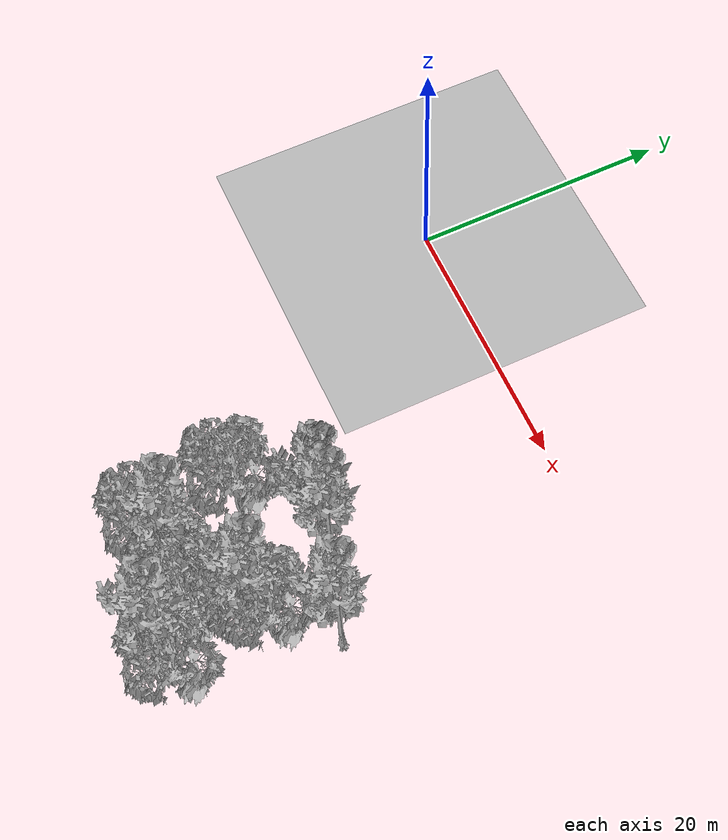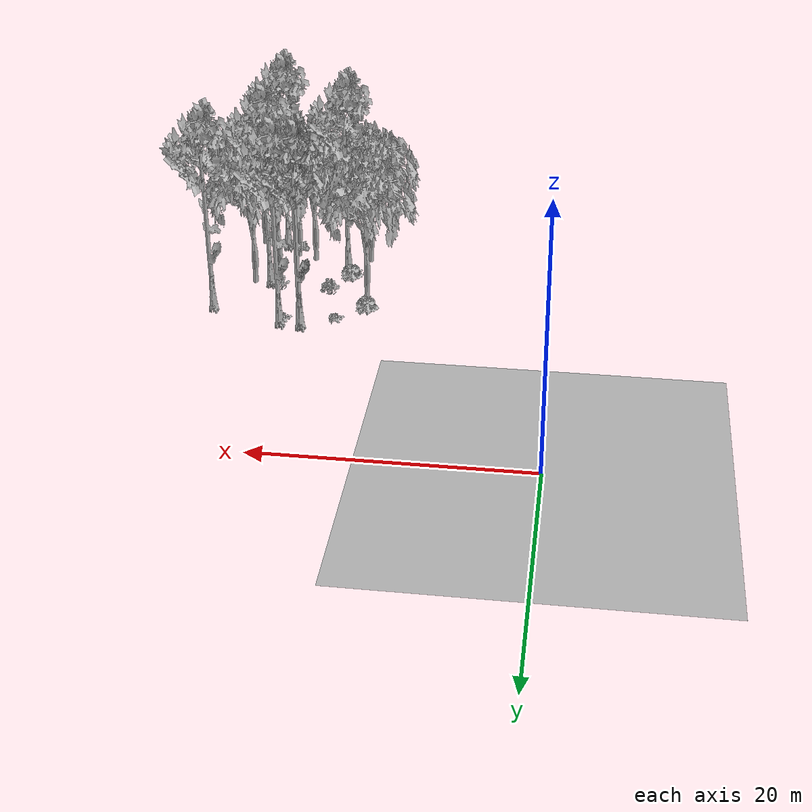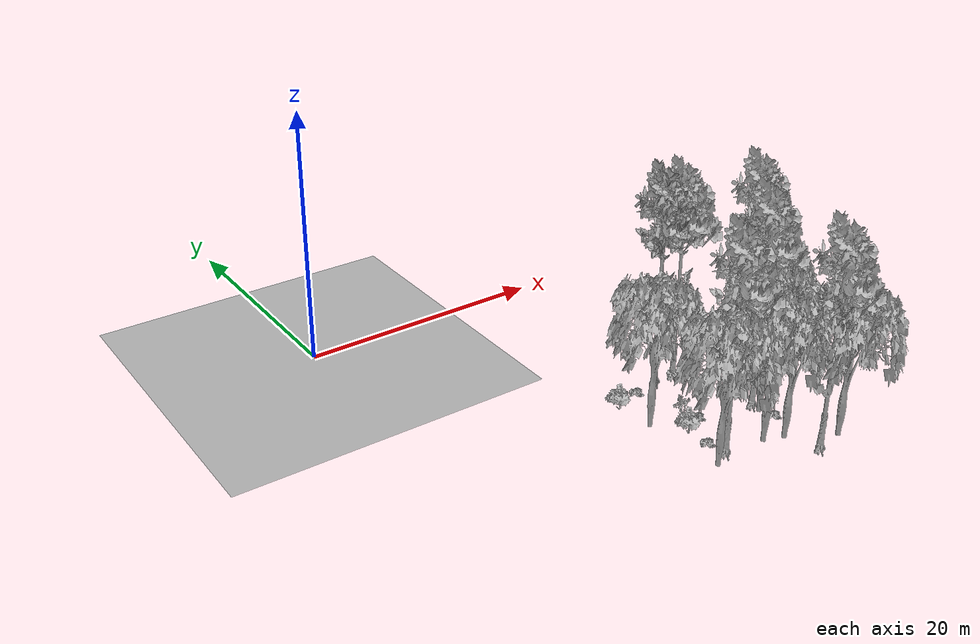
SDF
<sdf version="1.7">
 <world name="default">
  <model name="ground_plane">
   <static>1</static>
   <link name="link">
    <collision name="collision">
     <pose>-50 0 0 0 -0 0</pose>
     <geometry><plane><normal>0 0 1</normal><size>80 80</size></plane></geometry>
     <surface><contact><ode><min_depth>0.01</min_depth><max_vel>0</max_vel></ode></contact></surface>
    </collision>
    <visual name="grass">
     <cast_shadows>0</cast_shadows>
     <geometry>
      <mesh>
       <scale>0.46714285714285714 0.46714285714285714 0.1</scale>
       <uri>file://grass_plane/meshes/grass_plane.dae</uri>
      </mesh>
     </geometry>
    </visual>
   </link>
  </model>
  <model name="Tree 31">
   <static>1</static>
   <pose>27.04506858519764 -19.265056509333178 0 1.57079 -0 0</pose>
   <link name="link">
    <collision name="collision">
     <geometry><mesh><scale>3.5 5 3.5</scale><uri>model://tree_9/meshes/tree_9.obj</uri></mesh></geometry>
    </collision>
    <visual name="visual">
     <geometry><mesh><scale>3.5 5 3.5</scale><uri>model://tree_9/meshes/tree_9.obj</uri></mesh></geometry>
    </visual>
   </link>
  </model>
  <model name="Tree 59">
   <static>1</static>
   <pose>21.341915763431714 -17.429895293934994 0 1.57079 -0 0</pose>
   <link name="link">
    <collision name="collision">
     <geometry><mesh><scale>3.5 5 3.5</scale><uri>model://tree_9/meshes/tree_9.obj</uri></mesh></geometry>
    </collision>
    <visual name="visual">
     <geometry><mesh><scale>3.5 5 3.5</scale><uri>model://tree_9/meshes/tree_9.obj</uri></mesh></geometry>
    </visual>
   </link>
  </model>
  <model name="Tree 87">
   <static>1</static>
   <pose>21.836675745959397 -28.16158853375982 0 1.57079 -0 0</pose>
   <link name="link">
    <collision name="collision">
     <geometry><mesh><scale>3.5 5 3.5</scale><uri>model://tree_2/meshes/tree_2.obj</uri></mesh></geometry>
    </collision>
    <visual name="visual">
     <geometry><mesh><scale>3.5 5 3.5</scale><uri>model://tree_2/meshes/tree_2.obj</uri></mesh></geometry>
    </visual>
   </link>
  </model>
  <model name="Tree 142">
   <static>1</static>
   <pose>23.408536917499212 -23.666143860471507 0 1.57079 -0 0</pose>
   <link name="link">
    <collision name="collision">
     <geometry><mesh><scale>3.5 5 3.5</scale><uri>model://tree_9/meshes/tree_9.obj</uri></mesh></geometry>
    </collision>
    <visual name="visual">
     <geometry><mesh><scale>3.5 5 3.5</scale><uri>model://tree_9/meshes/tree_9.obj</uri></mesh></geometry>
    </visual>
   </link>
  </model>
  <model name="Tree 174">
   <static>1</static>
   <pose>23.314443339775245 -30.19840632438628 0 1.57079 -0 0</pose>
   <link name="link">
    <collision name="collision">
     <geometry><mesh><scale>3.5 5 3.5</scale><uri>model://tree_9/meshes/tree_9.obj</uri></mesh></geometry>
    </collision>
    <visual name="visual">
     <geometry><mesh><scale>3.5 5 3.5</scale><uri>model://tree_9/meshes/tree_9.obj</uri></mesh></geometry>
    </visual>
   </link>
  </model>
  <model name="Tree 175">
   <static>1</static>
   <pose>24.444471712358926 -23.261723861976435 0 1.57079 -0 0</pose>
   <link name="link">
    <collision name="collision">
     <geometry><mesh><scale>3.5 5 3.5</scale><uri>model://tree_2/meshes/tree_2.obj</uri></mesh></geometry>
    </collision>
    <visual name="visual">
     <geometry><mesh><scale>3.5 5 3.5</scale><uri>model://tree_2/meshes/tree_2.obj</uri></mesh></geometry>
    </visual>
   </link>
  </model>
  <model name="Tree 229">
   <static>1</static>
   <pose>25.18993648033144 -30.060204590851445 0 1.57079 -0 0</pose>
   <link name="link">
    <collision name="collision">
     <geometry><mesh><scale>3.5 5 3.5</scale><uri>model://tree_2/meshes/tree_2.obj</uri></mesh></geometry>
    </collision>
    <visual name="visual">
     <geometry><mesh><scale>3.5 5 3.5</scale><uri>model://tree_2/meshes/tree_2.obj</uri></mesh></geometry>
    </visual>
   </link>
  </model>
  <model name="Tree 324">
   <static>1</static>
   <pose>19.651913249117527 -17.256295517649693 0 1.57079 -0 0</pose>
   <link name="link">
    <collision name="collision">
     <geometry><mesh><scale>3.5 5 3.5</scale><uri>model://tree_9/meshes/tree_9.obj</uri></mesh></geometry>
    </collision>
    <visual name="visual">
     <geometry><mesh><scale>3.5 5 3.5</scale><uri>model://tree_9/meshes/tree_9.obj</uri></mesh></geometry>
    </visual>
   </link>
  </model>
  <model name="Tree 347">
   <static>1</static>
   <pose>15.72153486503138 -27.919104585124366 0 1.57079 -0 0</pose>
   <link name="link">
    <collision name="collision">
     <geometry><mesh><scale>3.5 5 3.5</scale><uri>model://tree_2/meshes/tree_2.obj</uri></mesh></geometry>
    </collision>
    <visual name="visual">
     <geometry><mesh><scale>3.5 5 3.5</scale><uri>model://tree_2/meshes/tree_2.obj</uri></mesh></geometry>
    </visual>
   </link>
  </model>
  <model name="Tree 348">
   <static>1</static>
   <pose>15.077811308792299 -21.818548373220004 0 1.57079 -0 0</pose>
   <link name="link">
    <collision name="collision">
     <geometry><mesh><scale>3.5 5 3.5</scale><uri>model://tree_2/meshes/tree_2.obj</uri></mesh></geometry>
    </collision>
    <visual name="visual">
     <geometry><mesh><scale>3.5 5 3.5</scale><uri>model://tree_2/meshes/tree_2.obj</uri></mesh></geometry>
    </visual>
   </link>
  </model>
  <model name="Tree 439">
   <static>1</static>
   <pose>22.803560132082858 -24.84670437900851 0 1.57079 -0 0</pose>
   <link name="link">
    <collision name="collision">
     <geometry><mesh><scale>3.5 5 3.5</scale><uri>model://tree_2/meshes/tree_2.obj</uri></mesh></geometry>
    </collision>
    <visual name="visual">
     <geometry><mesh><scale>3.5 5 3.5</scale><uri>model://tree_2/meshes/tree_2.obj</uri></mesh></geometry>
    </visual>
   </link>
  </model>
  <model name="Tree 440">
   <static>1</static>
   <pose>17.56092776240522 -26.874992370647995 0 1.57079 -0 0</pose>
   <link name="link">
    <collision name="collision">
     <geometry><mesh><scale>3.5 5 3.5</scale><uri>model://tree_9/meshes/tree_9.obj</uri></mesh></geometry>
    </collision>
    <visual name="visual">
     <geometry><mesh><scale>3.5 5 3.5</scale><uri>model://tree_9/meshes/tree_9.obj</uri></mesh></geometry>
    </visual>
   </link>
  </model>
  <model name="Tree 441">
   <static>1</static>
   <pose>19.698692074219387 -17.255089261533474 0 1.57079 -0 0</pose>
   <link name="link">
    <collision name="collision">
     <geometry><mesh><scale>3.5 5 3.5</scale><uri>model://tree_9/meshes/tree_9.obj</uri></mesh></geometry>
    </collision>
    <visual name="visual">
     <geometry><mesh><scale>3.5 5 3.5</scale><uri>model://tree_9/meshes/tree_9.obj</uri></mesh></geometry>
    </visual>
   </link>
  </model>
  <model name="Tree 495">
   <static>1</static>
   <pose>20.33149870368652 -27.622503040301236 0 1.57079 -0 0</pose>
   <link name="link">
    <collision name="collision">
     <geometry><mesh><scale>3.5 5 3.5</scale><uri>model://tree_2/meshes/tree_2.obj</uri></mesh></geometry>
    </collision>
    <visual name="visual">
     <geometry><mesh><scale>3.5 5 3.5</scale><uri>model://tree_2/meshes/tree_2.obj</uri></mesh></geometry>
    </visual>
   </link>
  </model>
  <model name="Bush 60">
   <static>1</static>
   <pose>22.25803159589026 -22.24194430354632 0 1.57079 -0 0</pose>
   <link name="link">
    <collision name="collision">
     <geometry><mesh><scale>2 2 2</scale><uri>model://bush_4/meshes/bush_4.obj</uri></mesh></geometry>
     <surface><contact><collide_without_contact>false</collide_without_contact></contact></surface>
    </collision>
    <visual name="visual">
     <geometry><mesh><scale>2 2 2</scale><uri>model://bush_4/meshes/bush_4.obj</uri></mesh></geometry>
    </visual>
   </link>
  </model>
  <model name="Bush 74">
   <static>1</static>
   <pose>16.735090615320253 -24.084290718607882 0 1.57079 -0 0</pose>
   <link name="link">
    <collision name="collision">
     <geometry><mesh><scale>2 2 2</scale><uri>model://bush_1/meshes/bush_1.obj</uri></mesh></geometry>
     <surface><contact><collide_without_contact>false</collide_without_contact></contact></surface>
    </collision>
    <visual name="visual">
     <geometry><mesh><scale>2 2 2</scale><uri>model://bush_1/meshes/bush_1.obj</uri></mesh></geometry>
    </visual>
   </link>
  </model>
  <model name="Bush 224">
   <static>1</static>
   <pose>16.87440756557404 -25.806295695334896 0 1.57079 -0 0</pose>
   <link name="link">
    <collision name="collision">
     <geometry><mesh><scale>2 2 2</scale><uri>model://bush_2/meshes/bush_2.obj</uri></mesh></geometry>
     <surface><contact><collide_without_contact>false</collide_without_contact></contact></surface>
    </collision>
    <visual name="visual">
     <geometry><mesh><scale>2 2 2</scale><uri>model://bush_2/meshes/bush_2.obj</uri></mesh></geometry>
    </visual>
   </link>
  </model>
  <model name="Bush 264">
   <static>1</static>
   <pose>14.691652220210642 -19.05031131544133 0 1.57079 -0 0</pose>
   <link name="link">
    <collision name="collision">
     <geometry><mesh><scale>2 2 2</scale><uri>model://bush_1/meshes/bush_1.obj</uri></mesh></geometry>
     <surface><contact><collide_without_contact>false</collide_without_contact></contact></surface>
    </collision>
    <visual name="visual">
     <geometry><mesh><scale>2 2 2</scale><uri>model://bush_1/meshes/bush_1.obj</uri></mesh></geometry>
    </visual>
   </link>
  </model>
  <model name="Bush 347">
   <static>1</static>
   <pose>18.5305606497758 -23.10445390964235 0 1.57079 -0 0</pose>
   <link name="link">
    <collision name="collision">
     <geometry><mesh><scale>2 2 2</scale><uri>model://bush_2/meshes/bush_2.obj</uri></mesh></geometry>
     <surface><contact><collide_without_contact>false</collide_without_contact></contact></surface>
    </collision>
    <visual name="visual">
     <geometry><mesh><scale>2 2 2</scale><uri>model://bush_2/meshes/bush_2.obj</uri></mesh></geometry>
    </visual>
   </link>
  </model>
  <model name="Bush 382">
   <static>1</static>
   <pose>18.135029157612557 -21.9088367202825 0 1.57079 -0 0</pose>
   <link name="link">
    <collision name="collision">
     <geometry><mesh><scale>2 2 2</scale><uri>model://bush_4/meshes/bush_4.obj</uri></mesh></geometry>
     <surface><contact><collide_without_contact>false</collide_without_contact></contact></surface>
    </collision>
    <visual name="visual">
     <geometry><mesh><scale>2 2 2</scale><uri>model://bush_4/meshes/bush_4.obj</uri></mesh></geometry>
    </visual>
   </link>
  </model>
  <model name="Bush 475">
   <static>1</static>
   <pose>23.179263399499483 -25.9948357637212 0 1.57079 -0 0</pose>
   <link name="link">
    <collision name="collision">
     <geometry><mesh><scale>2 2 2</scale><uri>model://bush_2/meshes/bush_2.obj</uri></mesh></geometry>
     <surface><contact><collide_without_contact>false</collide_without_contact></contact></surface>
    </collision>
    <visual name="visual">
     <geometry><mesh><scale>2 2 2</scale><uri>model://bush_2/meshes/bush_2.obj</uri></mesh></geometry>
    </visual>
   </link>
  </model>
  <model name="Bush 522">
   <static>1</static>
   <pose>21.094220451231266 -17.78177606163638 0 1.57079 -0 0</pose>
   <link name="link">
    <collision name="collision">
     <geometry><mesh><scale>2 2 2</scale><uri>model://bush_2/meshes/bush_2.obj</uri></mesh></geometry>
     <surface><contact><collide_without_contact>false</collide_without_contact></contact></surface>
    </collision>
    <visual name="visual">
     <geometry><mesh><scale>2 2 2</scale><uri>model://bush_2/meshes/bush_2.obj</uri></mesh></geometry>
    </visual>
   </link>
  </model>
  <model name="Bush 621">
   <static>1</static>
   <pose>17.038988227704273 -18.192176328013883 0 1.57079 -0 0</pose>
   <link name="link">
    <collision name="collision">
     <geometry><mesh><scale>2 2 2</scale><uri>model://bush_2/meshes/bush_2.obj</uri></mesh></geometry>
     <surface><contact><collide_without_contact>false</collide_without_contact></contact></surface>
    </collision>
    <visual name="visual">
     <geometry><mesh><scale>2 2 2</scale><uri>model://bush_2/meshes/bush_2.obj</uri></mesh></geometry>
    </visual>
   </link>
  </model>
 </world>
</sdf>
